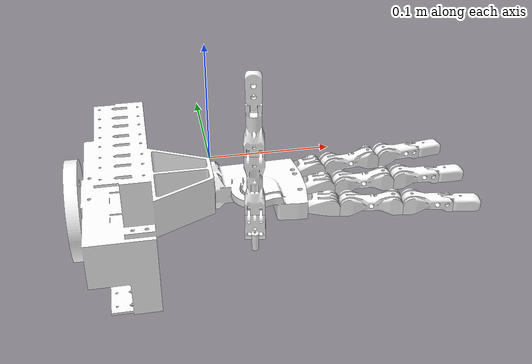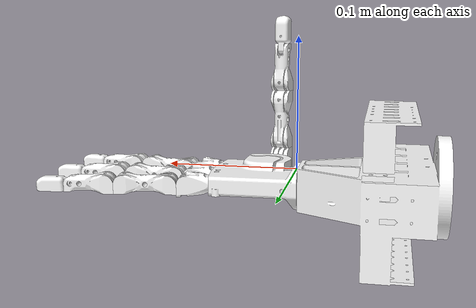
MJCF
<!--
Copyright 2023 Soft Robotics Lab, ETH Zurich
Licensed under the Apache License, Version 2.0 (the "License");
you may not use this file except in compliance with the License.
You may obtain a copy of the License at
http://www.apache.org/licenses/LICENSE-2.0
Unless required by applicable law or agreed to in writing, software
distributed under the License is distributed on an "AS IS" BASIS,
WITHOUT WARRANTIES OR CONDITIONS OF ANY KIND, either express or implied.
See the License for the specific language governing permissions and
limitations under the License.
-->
<mujoco model="right_hand_modular">
    <option collision="all"/>
    <compiler angle="radian"/>
    <include file="hand_metadata.xml"/>
    <worldbody>
        <include file="hand_structure.xml"/>
    </worldbody>
</mujoco>

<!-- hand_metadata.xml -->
<mujoco>
    <compiler angle="radian"/>
    <option collision="all"/>
    <default>
        <!-- use same geom params as the Shadow Hand model in IsaacGymEnv for now -->
        <geom rgba="1 1 1 1" type="mesh" density="1" friction="1 0.005 0.001" condim="3" margin="0.0005" contype="1" conaffinity="1"/>
        <!-- use same joint params as IsaacGymEnv for now -->
        <!-- TODO: joint damping and position control kp should eventually be set to sysID'ed values -->
        <joint type="hinge" limited="true" damping="0.05" armature="0.001" margin="0.01" frictionloss="0.001"/>
        <!-- actuator configuration -->
        <position ctrllimited="true" forcelimited="true" forcerange="-1 1" kp="2."/>
        <!-- the tendon which limits the two joints creating the rolling joint should be very limited in its length range -->
        <tendon limited="true" range="-0.001 0.001"/>
    </default>
    <asset>
        <!-- IsaacGym somehow does not respect the default mesh scale so set each of them manually here... -->

        <!--mesh name="base" file="mesh/base.stl" scale="1 1 1"/-->
        <mesh name="palm_main" file="mesh/Palm_main_bis.stl" scale="0.001 0.001 0.001"/>
        <mesh name="palm_thumb" file="mesh/Palm_Thumb.stl" scale="0.001 0.001 0.001"/>
        <mesh name="palm_index_fingsup" file="mesh/PALM_WO.stl" scale="0.001 0.001 0.001"/>
        <mesh name="palm_middle_fingsup" file="mesh/PALM_WO.stl" scale="0.001 0.001 0.001"/>
        <mesh name="palm_ring_fingsup" file="mesh/PALM_WO.stl" scale="0.001 0.001 0.001"/>
        <mesh name="rack" file="mesh/Rack.stl" scale="0.001 0.001 0.001"/>

        <mesh name="thumb_base" file="mesh/base_thumb.stl" scale="0.001 0.001 0.001"/>
        <mesh name="thumb_motor" file="mesh/MOTOR_CAGE_HEADLESS.stl" scale="0.001 0.001 0.001"/>
        <mesh name="thumb_pf" file="mesh/PF_bone.stl" scale="0.001 0.001 0.001"/>
        <mesh name="thumb_mf" file="mesh/MF_bone.stl" scale="0.001 0.001 0.001"/>
        <mesh name="thumb_df" file="mesh/DF_bone.stl" scale="0.001 0.001 0.001"/>

        <mesh name="index_pf" file="mesh/PF_bone.stl" scale="0.001 0.001 0.001"/>
        <mesh name="index_mf" file="mesh/MF_bone.stl" scale="0.001 0.001 0.001"/>
        <mesh name="index_df" file="mesh/DF_bone.stl" scale="0.001 0.001 0.001"/>

        <mesh name="middle_pf" file="mesh/PF_bone.stl" scale="0.001 0.001 0.001"/>
        <mesh name="middle_mf" file="mesh/MF_bone.stl" scale="0.001 0.001 0.001"/>
        <mesh name="middle_df" file="mesh/DF_bone.stl" scale="0.001 0.001 0.001"/>

        <mesh name="ring_pf" file="mesh/PF_bone.stl" scale="0.001 0.001 0.001"/>
        <mesh name="ring_mf" file="mesh/MF_bone.stl" scale="0.001 0.001 0.001"/>
        <mesh name="ring_df" file="mesh/DF_bone.stl" scale="0.001 0.001 0.001"/>

    </asset>
    <contact>
        <!-- neighboring bodies are excluded from contact calculation -->
    </contact>

    <sensor>
        <jointpos name="palm2cage" joint="palm2cage"/>
        <jointpos name="cage2base" joint="cage2base"/>
        <jointpos name="thumb_base2pf" joint="thumb_basevirt2pf"/>
        <jointpos name="thumb_pf2mf" joint="thumb_pfvirt2mf"/>
        <jointpos name="thumb_mf2df" joint="thumb_mf2df"/>

        <jointpos name="index_fingsup2pf" joint="index_basevirt2pf"/>
        <jointpos name="index_pf2mf" joint="index_pfvirt2mf"/>
        <jointpos name="index_mf2df" joint="index_mf2df"/>

        <jointpos name="middle_fingsup2pf" joint="middle_basevirt2pf"/>
        <jointpos name="middle_pf2mf" joint="middle_pfvirt2mf"/>
        <jointpos name="middle_mf2df" joint="middle_mf2df"/>

        <jointpos name="ring_fingsup2pf" joint="ring_basevirt2pf"/>
        <jointpos name="ring_pf2mf" joint="ring_pfvirt2mf"/>
        <jointpos name="ring_mf2df" joint="ring_mf2df"/>
    </sensor>

    <actuator>
        <position name="palm2cage" joint="palm2cage" ctrlrange="-1 0"/>
        <position name="cage2base" joint="cage2base" ctrlrange="-1.74533 0"/>

        <position name="thumb_base2pp" joint="thumb_basevirt2pf" ctrlrange="0 0.78"/>
        <position name="thumb_pf2mf" joint="thumb_pfvirt2mf" ctrlrange="0 0.698" kp="4"/>

        <position name="index_base2pp" joint="index_basevirt2pf" ctrlrange="0 0.78"/>
        <position name="index_pf2mf" joint="index_pfvirt2mf" ctrlrange="0 0.698" kp="4"/>

        <position name="middle_base2pp" joint="middle_basevirt2pf" ctrlrange="0 0.78"/>
        <position name="middle_pf2mf" joint="middle_pfvirt2mf" ctrlrange="0 0.698" kp="4"/>

        <position name="ring_base2pp" joint="ring_basevirt2pf" ctrlrange="0 0.78"/>
        <position name="ring_pf2mf" joint="ring_pfvirt2mf" ctrlrange="0 0.698" kp="4"/>

    </actuator>

    <!-- the rolling contact joints are modeled by two virtual joints, which have a constraint set here to constrain them to move together -->

    <tendon>
        <!-- Thumb -->
        <fixed name="thumb_base2pf">
            <joint joint="thumb_base2basevirt" coef="1"/>
            <joint joint="thumb_basevirt2pf" coef="-1"/>
        </fixed>
        <fixed name="thumb_pf2mf">
            <joint joint="thumb_pf2pfvirt" coef="1"/>
            <joint joint="thumb_pfvirt2mf" coef="-1"/>
        </fixed>
        <fixed name="thumb_mf2df">
            <joint joint="thumb_pf2pfvirt" coef="1"/>
            <joint joint="thumb_pfvirt2mf" coef="1"/>
            <joint joint="thumb_mf2df" coef="-0.895"/>
        </fixed>

        <!-- Index -->
        <fixed name="index_base2pf">
            <joint joint="index_base2basevirt" coef="1"/>
            <joint joint="index_basevirt2pf" coef="-1"/>
        </fixed>
        <fixed name="index_pf2mf">
            <joint joint="index_pf2pfvirt" coef="1"/>
            <joint joint="index_pfvirt2mf" coef="-1"/>
        </fixed>
        <fixed name="index_mf2df">
            <joint joint="index_pf2pfvirt" coef="1"/>
            <joint joint="index_pfvirt2mf" coef="1"/>
            <joint joint="index_mf2df" coef="-0.895"/>
        </fixed>

        <!-- Middle -->
        <fixed name="middle_base2pf">
            <joint joint="middle_base2basevirt" coef="1"/>
            <joint joint="middle_basevirt2pf" coef="-1"/>
        </fixed>
        <fixed name="middle_pf2mf">
            <joint joint="middle_pf2pfvirt" coef="1"/>
            <joint joint="middle_pfvirt2mf" coef="-1"/>
        </fixed>
        <fixed name="middle_mf2df">
            <joint joint="middle_pf2pfvirt" coef="1"/>
            <joint joint="middle_pfvirt2mf" coef="1"/>
            <joint joint="middle_mf2df" coef="-0.895"/>
        </fixed>

        <!-- Ring -->
        <fixed name="ring_base2pf">
            <joint joint="ring_base2basevirt" coef="1"/>
            <joint joint="ring_basevirt2pf" coef="-1"/>
        </fixed>
        <fixed name="ring_pf2mf">
            <joint joint="ring_pf2pfvirt" coef="1"/>
            <joint joint="ring_pfvirt2mf" coef="-1"/>
        </fixed>
        <fixed name="ring_mf2df">
            <joint joint="ring_pf2pfvirt" coef="1"/>
            <joint joint="ring_pfvirt2mf" coef="1"/>
            <joint joint="ring_mf2df" coef="-0.895"/>
        </fixed>
    </tendon>
</mujoco>

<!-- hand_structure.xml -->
<mujoco model="right_faive">
    <body name="root">
        <geom mesh="rack"/>
        <body name="palm" pos="0.069 0.0035 -0.0115">
            <!-- So that the contact convex hull can be calculated for each distinct component rather than for the entire palm structure, separate it into separate geoms -->
            <geom name="palm" mesh="palm_main"/>
            <!--thumb-->
            <body name="cage" euler="1.57079632679  -0.174533 0" pos="-0.038581 -0.052 0.0023">
                <inertial pos="0 0 0" mass="0.028" diaginertia="4E-10 4E-10 3E-10" />
                <joint name="palm2cage" axis="0 1 0" range="-1 0"/>
                <body name="thumb_base" pos="0 -0.012 0.021" euler="1.57079632679 3.14159265359 -1.57079632679 ">
                    <joint name="cage2base" axis="1 0 0" range="-0.174533 1.5708"/>
                    <geom mesh="thumb_base"/>
                    <body name="thumb_basevirt" pos="-0.0125 0 0.014" euler="0 0 -1.57079632679 ">
                        <joint name="thumb_base2basevirt" axis="-1 0 0" range="0 0.78539816339"/>
                        <inertial pos="0 0 0" mass="0.001" diaginertia="4E-10 4E-10 3E-10" />
                        <body name="thumb_pf" pos="0 0 0.015" euler="-1.57079632679  0 0">
                            <joint name="thumb_basevirt2pf" axis="-1 0 0" range="0 0.78539816339"/>
                            <geom mesh="thumb_pf"/>
                            <body name="thumb_pfvirt" pos="0 -0.035 0" euler="1.57079632679  0 0">
                                <joint name="thumb_pf2pfvirt" axis="-1 0 0"  range="0 0.78539816339"/>
                                <inertial pos="0 0 0" mass="0.001" diaginertia="4E-10 4E-10 3E-10" />
                                <body name="thumb_mf" pos="0 0 0.015" euler="1.57079632679  3.14159265359 0">
                                    <joint name="thumb_pfvirt2mf" axis="1 0 0" range="0 0.78539816339"/>
                                    <geom mesh="thumb_mf"/>
                                    <body name="thumb_df" pos="0 0.0275 0" euler="0 0 0">
                                        <joint name="thumb_mf2df" axis="1 0 0" range="0 1.57079632679 "/>
                                        <geom name="thumb_df" mesh="thumb_df"/>
                                    </body>
                                </body>
                            </body>
                        </body>
                    </body>
                </body>
            </body>
            <!--ring-->
            <body name="ring_fingsup" euler="-1.57079632679 1.424188669627 0" pos="-0.00155 -0.010083 -0.005">
                <geom mesh="palm_ring_fingsup"/>
                <body name="ring_basevirt" pos="0 0 0.021" euler="3.14159265359 3.14159265359 0">
                    <joint name="ring_base2basevirt" axis="-1 0 0" range="0 0.78539816339"/>
                    <inertial pos="0 0 0" mass="0.001" diaginertia="4E-10 4E-10 3E-10" />
                    <body name="ring_pf" pos="0 0 0.015" euler="-1.57079632679 0 0">
                        <joint name="ring_basevirt2pf" axis="-1 0 0" range="0 0.78539816339"/>
                        <geom mesh="ring_pf"/>
                        <body name="ring_pfvirt" pos="0 -0.035 0" euler="1.57079632679 0 0">
                            <joint name="ring_pf2pfvirt" axis="-1 0 0"  range="0 0.78539816339"/>
                            <inertial pos="0 0 0" mass="0.001" diaginertia="4E-10 4E-10 3E-10" />
                            <body name="ring_mf" pos="0 0 0.015" euler="1.57079632679 3.14159265359 0">
                                <joint name="ring_pfvirt2mf" axis="1 0 0" range="0 0.78539816339"/>
                                <geom mesh="ring_mf"/>
                                <body name="ring_df" pos="0 0.0275 0" euler="0 0 0">
                                    <joint name="ring_mf2df" axis="1 0 0" range="0 1.57079632679"/>
                                    <geom mesh="ring_df"/>
                                </body>
                            </body>
                        </body>
                    </body>
                </body>
            </body>
            <!--middle-->
            <body name="middle_fingsup" euler="-1.57079632679 1.57079632679 0" pos="0.000451 -0.035 -0.005">
                <geom mesh="palm_middle_fingsup"/>
                <body name="middle_basevirt" pos="0 0 0.021" euler="3.14159265359 3.14159265359 0">
                    <joint name="middle_base2basevirt" axis="-1 0 0" range="0 0.78539816339"/>
                    <inertial pos="0 0 0" mass="0.001" diaginertia="4E-10 4E-10 3E-10" />
                    <body name="middle_pf" pos="0 0 0.015" euler="-1.57079632679 0 0">
                        <joint name="middle_basevirt2pf" axis="-1 0 0" range="0 0.78539816339"/>
                        <geom mesh="middle_pf"/>
                        <body name="middle_pfvirt" pos="0 -0.035 0" euler="1.57079632679 0 0">
                            <joint name="middle_pf2pfvirt" axis="-1 0 0"  range="0 0.78539816339"/>
                            <inertial pos="0 0 0" mass="0.001" diaginertia="4E-10 4E-10 3E-10" />
                            <body name="middle_mf" pos="0 0 0.015" euler="1.57079632679 3.14159265359 0">
                                <joint name="middle_pfvirt2mf" axis="1 0 0" range="0 0.78539816339"/>
                                <geom mesh="middle_mf"/>
                                <body name="middle_df" pos="0 0.0275 0" euler="0 0 0">
                                    <joint name="middle_mf2df" axis="1 0 0" range="0 1.57079632679"/>
                                    <geom mesh="middle_df"/>
                                </body>
                            </body>
                        </body>
                    </body>
                </body>
            </body>
            <!--Index-->
            <body name="index_fingsup" euler="-1.57079632679 1.717403983962 0" pos="-0.00155 -0.06 -0.005">
                <geom mesh="palm_index_fingsup"/>
                <body name="index_basevirt" pos="0 0 0.021" euler="3.14159265359 3.14159265359 0">
                    <joint name="index_base2basevirt" axis="-1 0 0" range="0 0.78539816339"/>
                    <inertial pos="0 0 0" mass="0.001" diaginertia="4E-10 4E-10 3E-10" />
                    <body name="index_pf" pos="0 0 0.015" euler="-1.57079632679 0 0">
                        <joint name="index_basevirt2pf" axis="-1 0 0" range="0 0.78539816339"/>
                        <geom mesh="index_pf"/>
                        <body name="index_pfvirt" pos="0 -0.035 0" euler="1.57079632679 0 0">
                            <joint name="index_pf2pfvirt" axis="-1 0 0"  range="0 0.78539816339"/>
                            <inertial pos="0 0 0" mass="0.001" diaginertia="4E-10 4E-10 3E-10" />
                            <body name="index_mf" pos="0 0 0.015" euler="1.57079632679 3.14159265359 0">
                                <joint name="index_pfvirt2mf" axis="1 0 0" range="0 0.78539816339"/>
                                <geom mesh="index_mf"/>
                                <body name="index_df" pos="0 0.0275 0" euler="0 0 0">
                                    <joint name="index_mf2df" axis="1 0 0" range="0 1.57079632679"/>
                                    <geom mesh="index_df"/>
                                </body>
                            </body>
                        </body>
                    </body>
                </body>
            </body>
        </body>
    </body>
</mujoco>
